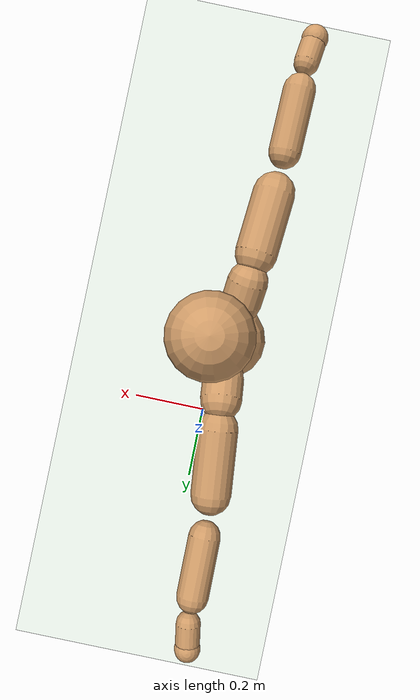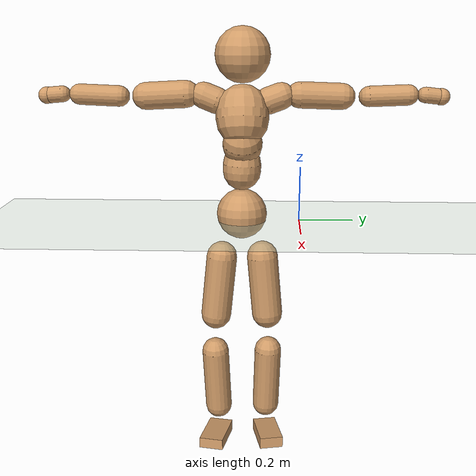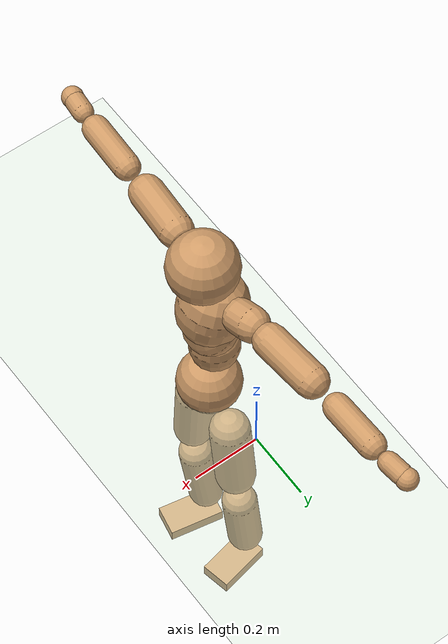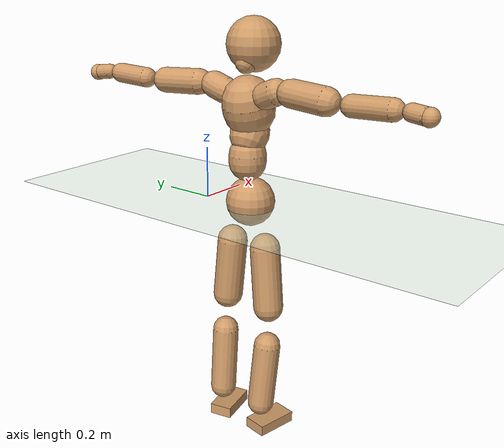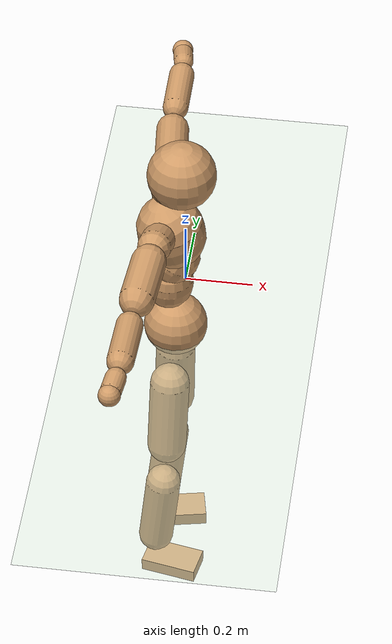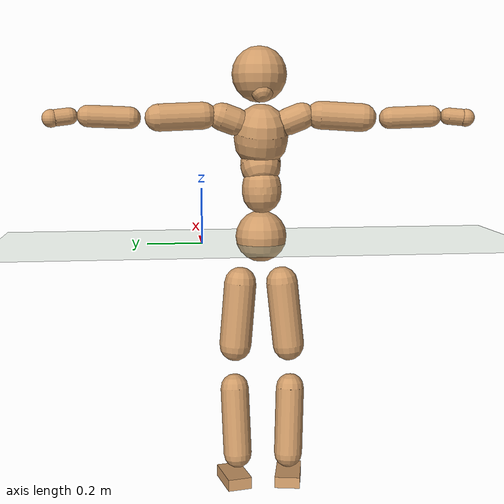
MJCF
<mujoco model="humanoid">
  <compiler coordinate="local" angle="radian"/>
  <default>
    <joint damping="0.0" armature="0.01" stiffness="0.0" limited="true"/>
    <geom conaffinity="1" condim="3" contype="7" margin="0.001" rgba="0.8 0.6 .4 1"/>
  </default>
  <asset>
    <texture type="skybox" builtin="gradient" rgb1=".4 .5 .6" rgb2="0 0 0" width="100" height="100"/>
    <texture builtin="flat" height="1278" mark="cross" markrgb="1 1 1" name="texgeom" random="0.01" rgb1="0.8 0.6 0.4" rgb2="0.8 0.6 0.4" type="cube" width="127"/>
    <texture builtin="checker" height="100" name="texplane" rgb1="0 0 0" rgb2="0.8 0.8 0.8" type="2d" width="100"/>
    <material name="MatPlane" reflectance="0.5" shininess="1" specular="1" texrepeat="60 60" texture="texplane"/>
    <material name="geom" texture="texgeom" texuniform="true"/>
  </asset>
  <worldbody>
    <light cutoff="100" diffuse="1 1 1" dir="-0 0 -1.3" directional="true" exponent="1" pos="0 0 1.3" specular=".1 .1 .1"/>
    <geom conaffinity="1" condim="3" name="floor" pos="0 0 0" rgba="0.8 0.9 0.8 1" size="100 100 .2" type="plane" material="MatPlane"/>
    <body name="Pelvis" pos="-0.0006 -0.215 0.0241">
      <freejoint name="Pelvis"/>
      <geom type="sphere" contype="1" conaffinity="1" density="500" size="0.0935" pos="0.0000 0.0000 0.0000" name="Pelvis"/>
      <body name="L_Hip" pos="-0.01 0.0714 -0.0934">
        <joint name="L_Hip_x" type="hinge" pos="0 0 0" axis="1 0 0" stiffness="800" damping="80" armature="0.02" range="-180.0000 180.0000"/>
        <joint name="L_Hip_y" type="hinge" pos="0 0 0" axis="0 1 0" stiffness="800" damping="80" armature="0.02" range="-180.0000 180.0000"/>
        <joint name="L_Hip_z" type="hinge" pos="0 0 0" axis="0 0 1" stiffness="800" damping="80" armature="0.02" range="-180.0000 180.0000"/>
        <geom type="capsule" contype="1" conaffinity="1" density="500" fromto="-0.0017 0.0067 -0.0779 -0.0069 0.0269 -0.3115" size="0.0588" name="L_Hip"/>
        <body name="L_Knee" pos="-0.0086 0.0337 -0.3894">
          <joint name="L_Knee_x" type="hinge" pos="0 0 0" axis="1 0 0" stiffness="800" damping="80" armature="0.02" range="-180.0000 180.0000"/>
          <joint name="L_Knee_y" type="hinge" pos="0 0 0" axis="0 1 0" stiffness="800" damping="80" armature="0.02" range="-180.0000 180.0000"/>
          <joint name="L_Knee_z" type="hinge" pos="0 0 0" axis="0 0 1" stiffness="800" damping="80" armature="0.02" range="-180.0000 180.0000"/>
          <geom type="capsule" contype="1" conaffinity="1" density="500" fromto="-0.0090 -0.0025 -0.0828 -0.0360 -0.0100 -0.3314" size="0.052" name="L_Knee"/>
          <body name="L_Ankle" pos="-0.045 -0.0125 -0.4142">
            <joint name="L_Ankle_x" type="hinge" pos="0 0 0" axis="1 0 0" stiffness="800" damping="80" armature="0.02" range="-180.0000 180.0000"/>
            <joint name="L_Ankle_y" type="hinge" pos="0 0 0" axis="0 1 0" stiffness="800" damping="80" armature="0.02" range="-180.0000 180.0000"/>
            <joint name="L_Ankle_z" type="hinge" pos="0 0 0" axis="0 0 1" stiffness="800" damping="80" armature="0.02" range="-180.0000 180.0000"/>
            <geom type="box" contype="1" conaffinity="1" density="500" pos="0.0585 0.0120 -0.0293" size="0.0813 0.0453 0.0219" quat="0.9949 0.0000 0.0000 0.1012" name="L_Ankle"/>
            <body name="L_Toe" pos="0.1169 0.024 -0.0585">
              <joint name="L_Toe_x" type="hinge" pos="0 0 0" axis="1 0 0" stiffness="500" damping="50" armature="0.02" range="-180.0000 180.0000"/>
              <joint name="L_Toe_y" type="hinge" pos="0 0 0" axis="0 1 0" stiffness="500" damping="50" armature="0.02" range="-180.0000 180.0000"/>
              <joint name="L_Toe_z" type="hinge" pos="0 0 0" axis="0 0 1" stiffness="500" damping="50" armature="0.02" range="-180.0000 180.0000"/>
              <geom type="box" contype="1" conaffinity="1" density="500" pos="0.0000 0.0000 0.0282" size="0.001 0.0023 0.001" quat="0.9942 0.0000 0.0000 0.1076" name="L_Toe"/>
            </body>
          </body>
        </body>
      </body>
      <body name="R_Hip" pos="-0.0054 -0.0687 -0.0932">
        <joint name="R_Hip_x" type="hinge" pos="0 0 0" axis="1 0 0" stiffness="800" damping="80" armature="0.02" range="-180.0000 180.0000"/>
        <joint name="R_Hip_y" type="hinge" pos="0 0 0" axis="0 1 0" stiffness="800" damping="80" armature="0.02" range="-180.0000 180.0000"/>
        <joint name="R_Hip_z" type="hinge" pos="0 0 0" axis="0 0 1" stiffness="800" damping="80" armature="0.02" range="-180.0000 180.0000"/>
        <geom type="capsule" contype="1" conaffinity="1" density="500" fromto="-0.0021 -0.0081 -0.0793 -0.0084 -0.0325 -0.3170" size="0.058" name="R_Hip"/>
        <body name="R_Knee" pos="-0.0105 -0.0407 -0.3963">
          <joint name="R_Knee_x" type="hinge" pos="0 0 0" axis="1 0 0" stiffness="800" damping="80" armature="0.02" range="-180.0000 180.0000"/>
          <joint name="R_Knee_y" type="hinge" pos="0 0 0" axis="0 1 0" stiffness="800" damping="80" armature="0.02" range="-180.0000 180.0000"/>
          <joint name="R_Knee_z" type="hinge" pos="0 0 0" axis="0 0 1" stiffness="800" damping="80" armature="0.02" range="-180.0000 180.0000"/>
          <geom type="capsule" contype="1" conaffinity="1" density="500" fromto="-0.0085 0.0032 -0.0832 -0.0340 0.0129 -0.3326" size="0.0523" name="R_Knee"/>
          <body name="R_Ankle" pos="-0.0425 0.0161 -0.4158">
            <joint name="R_Ankle_x" type="hinge" pos="0 0 0" axis="1 0 0" stiffness="800" damping="80" armature="0.02" range="-180.0000 180.0000"/>
            <joint name="R_Ankle_y" type="hinge" pos="0 0 0" axis="0 1 0" stiffness="800" damping="80" armature="0.02" range="-180.0000 180.0000"/>
            <joint name="R_Ankle_z" type="hinge" pos="0 0 0" axis="0 0 1" stiffness="800" damping="80" armature="0.02" range="-180.0000 180.0000"/>
            <geom type="box" contype="1" conaffinity="1" density="500" pos="0.0605 -0.0114 -0.0251" size="0.0843 0.0468 0.0211" quat="0.9957 0.0000 0.0000 -0.0931" name="R_Ankle"/>
            <body name="R_Toe" pos="0.121 -0.0228 -0.0503">
              <joint name="R_Toe_x" type="hinge" pos="0 0 0" axis="1 0 0" stiffness="500" damping="50" armature="0.02" range="-180.0000 180.0000"/>
              <joint name="R_Toe_y" type="hinge" pos="0 0 0" axis="0 1 0" stiffness="500" damping="50" armature="0.02" range="-180.0000 180.0000"/>
              <joint name="R_Toe_z" type="hinge" pos="0 0 0" axis="0 0 1" stiffness="500" damping="50" armature="0.02" range="-180.0000 180.0000"/>
              <geom type="box" contype="1" conaffinity="1" density="500" pos="0.0000 0.0000 0.0270" size="0.0009 0.0023 0.0011" quat="0.9965 0.0000 0.0000 -0.0838" name="R_Toe"/>
            </body>
          </body>
        </body>
      </body>
      <body name="Torso" pos="-0.0202 -0.002 0.1069">
        <joint name="Torso_x" type="hinge" pos="0 0 0" axis="1 0 0" stiffness="1000" damping="100" armature="0.02" range="-180.0000 180.0000"/>
        <joint name="Torso_y" type="hinge" pos="0 0 0" axis="0 1 0" stiffness="1000" damping="100" armature="0.02" range="-180.0000 180.0000"/>
        <joint name="Torso_z" type="hinge" pos="0 0 0" axis="0 0 1" stiffness="1000" damping="100" armature="0.02" range="-180.0000 180.0000"/>
        <geom type="capsule" contype="1" conaffinity="1" density="500" fromto="0.0009 0.0021 0.0770 0.0006 0.0014 0.0513" size="0.071" name="Torso"/>
        <body name="Spine" pos="0.0014 0.0035 0.1283">
          <joint name="Spine_x" type="hinge" pos="0 0 0" axis="1 0 0" stiffness="1000" damping="100" armature="0.02" range="-180.0000 180.0000"/>
          <joint name="Spine_y" type="hinge" pos="0 0 0" axis="0 1 0" stiffness="1000" damping="100" armature="0.02" range="-180.0000 180.0000"/>
          <joint name="Spine_z" type="hinge" pos="0 0 0" axis="0 0 1" stiffness="1000" damping="100" armature="0.02" range="-180.0000 180.0000"/>
          <geom type="capsule" contype="1" conaffinity="1" density="500" fromto="0.0173 0.0008 0.0310 0.0115 0.0005 0.0207" size="0.0734" name="Spine"/>
          <body name="Chest" pos="0.0288 0.0013 0.0517">
            <joint name="Chest_x" type="hinge" pos="0 0 0" axis="1 0 0" stiffness="1000" damping="100" armature="0.02" range="-180.0000 180.0000"/>
            <joint name="Chest_y" type="hinge" pos="0 0 0" axis="0 1 0" stiffness="1000" damping="100" armature="0.02" range="-180.0000 180.0000"/>
            <joint name="Chest_z" type="hinge" pos="0 0 0" axis="0 0 1" stiffness="1000" damping="100" armature="0.02" range="-180.0000 180.0000"/>
            <geom type="capsule" contype="1" conaffinity="1" density="500" fromto="-0.0269 -0.0013 0.0925 -0.0180 -0.0008 0.0617" size="0.0971" name="Chest"/>
            <body name="Neck" pos="-0.0497 -0.0038 0.2214">
              <joint name="Neck_x" type="hinge" pos="0 0 0" axis="1 0 0" stiffness="500" damping="50" armature="0.02" range="-180.0000 180.0000"/>
              <joint name="Neck_y" type="hinge" pos="0 0 0" axis="0 1 0" stiffness="500" damping="50" armature="0.02" range="-180.0000 180.0000"/>
              <joint name="Neck_z" type="hinge" pos="0 0 0" axis="0 0 1" stiffness="500" damping="50" armature="0.02" range="-180.0000 180.0000"/>
              <geom type="capsule" contype="1" conaffinity="1" density="500" fromto="0.0115 0.0010 0.0145 0.0458 0.0039 0.0578" size="0.0417" name="Neck"/>
              <body name="Head" pos="0.0573 0.0049 0.0723">
                <joint name="Head_x" type="hinge" pos="0 0 0" axis="1 0 0" stiffness="500" damping="50" armature="0.02" range="-180.0000 180.0000"/>
                <joint name="Head_y" type="hinge" pos="0 0 0" axis="0 1 0" stiffness="500" damping="50" armature="0.02" range="-180.0000 180.0000"/>
                <joint name="Head_z" type="hinge" pos="0 0 0" axis="0 0 1" stiffness="500" damping="50" armature="0.02" range="-180.0000 180.0000"/>
                <geom type="sphere" contype="1" conaffinity="1" density="500" size="0.0995" pos="0.0000 0.0000 0.0000" name="Head"/>
              </body>
            </body>
            <body name="L_Thorax" pos="-0.0404 0.0744 0.1213">
              <joint name="L_Thorax_x" type="hinge" pos="0 0 0" axis="1 0 0" stiffness="500" damping="50" armature="0.02" range="-180.0000 180.0000"/>
              <joint name="L_Thorax_y" type="hinge" pos="0 0 0" axis="0 1 0" stiffness="500" damping="50" armature="0.02" range="-180.0000 180.0000"/>
              <joint name="L_Thorax_z" type="hinge" pos="0 0 0" axis="0 0 1" stiffness="500" damping="50" armature="0.02" range="-180.0000 180.0000"/>
              <geom type="capsule" contype="1" conaffinity="1" density="500" fromto="-0.0015 0.0163 0.0058 -0.0061 0.0651 0.0234" size="0.0493" name="L_Thorax"/>
              <body name="L_Shoulder" pos="-0.0076 0.0813 0.0292">
                <joint name="L_Shoulder_x" type="hinge" pos="0 0 0" axis="1 0 0" stiffness="500" damping="50" armature="0.02" range="-720.0000 720.0000"/>
                <joint name="L_Shoulder_y" type="hinge" pos="0 0 0" axis="0 1 0" stiffness="500" damping="50" armature="0.02" range="-720.0000 720.0000"/>
                <joint name="L_Shoulder_z" type="hinge" pos="0 0 0" axis="0 0 1" stiffness="500" damping="50" armature="0.02" range="-720.0000 720.0000"/>
                <geom type="capsule" contype="1" conaffinity="1" density="500" fromto="-0.0051 0.0516 -0.0022 -0.0206 0.2063 -0.0086" size="0.0481" name="L_Shoulder"/>
                <body name="L_Elbow" pos="-0.0257 0.2579 -0.0108">
                  <joint name="L_Elbow_x" type="hinge" pos="0 0 0" axis="1 0 0" stiffness="500" damping="50" armature="0.02" range="-720.0000 720.0000"/>
                  <joint name="L_Elbow_y" type="hinge" pos="0 0 0" axis="0 1 0" stiffness="500" damping="50" armature="0.02" range="-720.0000 720.0000"/>
                  <joint name="L_Elbow_z" type="hinge" pos="0 0 0" axis="0 0 1" stiffness="500" damping="50" armature="0.02" range="-720.0000 720.0000"/>
                  <geom type="capsule" contype="1" conaffinity="1" density="500" fromto="-0.0003 0.0473 0.0019 -0.0013 0.1894 0.0077" size="0.0379" name="L_Elbow"/>
                  <body name="L_Wrist" pos="-0.0017 0.2367 0.0096">
                    <joint name="L_Wrist_x" type="hinge" pos="0 0 0" axis="1 0 0" stiffness="300" damping="30" armature="0.02" range="-180.0000 180.0000"/>
                    <joint name="L_Wrist_y" type="hinge" pos="0 0 0" axis="0 1 0" stiffness="300" damping="30" armature="0.02" range="-180.0000 180.0000"/>
                    <joint name="L_Wrist_z" type="hinge" pos="0 0 0" axis="0 0 1" stiffness="300" damping="30" armature="0.02" range="-180.0000 180.0000"/>
                    <geom type="capsule" contype="1" conaffinity="1" density="500" fromto="-0.0026 0.0153 -0.0019 -0.0102 0.0614 -0.0074" size="0.0291" name="L_Wrist"/>
                    <body name="L_Hand" pos="-0.0128 0.0767 -0.0093">
                      <joint name="L_Hand_x" type="hinge" pos="0 0 0" axis="1 0 0" stiffness="300" damping="30" armature="0.02" range="-180.0000 180.0000"/>
                      <joint name="L_Hand_y" type="hinge" pos="0 0 0" axis="0 1 0" stiffness="300" damping="30" armature="0.02" range="-180.0000 180.0000"/>
                      <joint name="L_Hand_z" type="hinge" pos="0 0 0" axis="0 0 1" stiffness="300" damping="30" armature="0.02" range="-180.0000 180.0000"/>
                      <geom type="sphere" contype="1" conaffinity="1" density="500" size="0.0310" pos="0.0000 0.0000 0.0000" name="L_Hand"/>
                    </body>
                  </body>
                </body>
              </body>
            </body>
            <body name="R_Thorax" pos="-0.0446 -0.077 0.1201">
              <joint name="R_Thorax_x" type="hinge" pos="0 0 0" axis="1 0 0" stiffness="500" damping="50" armature="0.02" range="-180.0000 180.0000"/>
              <joint name="R_Thorax_y" type="hinge" pos="0 0 0" axis="0 1 0" stiffness="500" damping="50" armature="0.02" range="-180.0000 180.0000"/>
              <joint name="R_Thorax_z" type="hinge" pos="0 0 0" axis="0 0 1" stiffness="500" damping="50" armature="0.02" range="-180.0000 180.0000"/>
              <geom type="capsule" contype="1" conaffinity="1" density="500" fromto="-0.0016 -0.0166 0.0065 -0.0065 -0.0666 0.0261" size="0.0483" name="R_Thorax"/>
              <body name="R_Shoulder" pos="-0.0081 -0.0832 0.0326">
                <joint name="R_Shoulder_x" type="hinge" pos="0 0 0" axis="1 0 0" stiffness="500" damping="50" armature="0.02" range="-720.0000 720.0000"/>
                <joint name="R_Shoulder_y" type="hinge" pos="0 0 0" axis="0 1 0" stiffness="500" damping="50" armature="0.02" range="-720.0000 720.0000"/>
                <joint name="R_Shoulder_z" type="hinge" pos="0 0 0" axis="0 0 1" stiffness="500" damping="50" armature="0.02" range="-720.0000 720.0000"/>
                <geom type="capsule" contype="1" conaffinity="1" density="500" fromto="-0.0041 -0.0498 -0.0029 -0.0163 -0.1991 -0.0118" size="0.0501" name="R_Shoulder"/>
                <body name="R_Elbow" pos="-0.0204 -0.2489 -0.0147">
                  <joint name="R_Elbow_x" type="hinge" pos="0 0 0" axis="1 0 0" stiffness="500" damping="50" armature="0.02" range="-720.0000 720.0000"/>
                  <joint name="R_Elbow_y" type="hinge" pos="0 0 0" axis="0 1 0" stiffness="500" damping="50" armature="0.02" range="-720.0000 720.0000"/>
                  <joint name="R_Elbow_z" type="hinge" pos="0 0 0" axis="0 0 1" stiffness="500" damping="50" armature="0.02" range="-720.0000 720.0000"/>
                  <geom type="capsule" contype="1" conaffinity="1" density="500" fromto="-0.0011 -0.0494 0.0019 -0.0045 -0.1975 0.0077" size="0.0385" name="R_Elbow"/>
                  <body name="R_Wrist" pos="-0.0057 -0.2468 0.0096">
                    <joint name="R_Wrist_x" type="hinge" pos="0 0 0" axis="1 0 0" stiffness="300" damping="30" armature="0.02" range="-180.0000 180.0000"/>
                    <joint name="R_Wrist_y" type="hinge" pos="0 0 0" axis="0 1 0" stiffness="300" damping="30" armature="0.02" range="-180.0000 180.0000"/>
                    <joint name="R_Wrist_z" type="hinge" pos="0 0 0" axis="0 0 1" stiffness="300" damping="30" armature="0.02" range="-180.0000 180.0000"/>
                    <geom type="capsule" contype="1" conaffinity="1" density="500" fromto="-0.0020 -0.0156 -0.0014 -0.0080 -0.0622 -0.0056" size="0.03" name="R_Wrist"/>
                    <body name="R_Hand" pos="-0.01 -0.0778 -0.007">
                      <joint name="R_Hand_x" type="hinge" pos="0 0 0" axis="1 0 0" stiffness="300" damping="30" armature="0.02" range="-180.0000 180.0000"/>
                      <joint name="R_Hand_y" type="hinge" pos="0 0 0" axis="0 1 0" stiffness="300" damping="30" armature="0.02" range="-180.0000 180.0000"/>
                      <joint name="R_Hand_z" type="hinge" pos="0 0 0" axis="0 0 1" stiffness="300" damping="30" armature="0.02" range="-180.0000 180.0000"/>
                      <geom type="sphere" contype="1" conaffinity="1" density="500" size="0.0314" pos="0.0000 0.0000 0.0000" name="R_Hand"/>
                    </body>
                  </body>
                </body>
              </body>
            </body>
          </body>
        </body>
      </body>
    </body>
  </worldbody>
  <actuator>
    <motor name="L_Hip_x" joint="L_Hip_x" gear="500"/>
    <motor name="L_Hip_y" joint="L_Hip_y" gear="500"/>
    <motor name="L_Hip_z" joint="L_Hip_z" gear="500"/>
    <motor name="L_Knee_x" joint="L_Knee_x" gear="500"/>
    <motor name="L_Knee_y" joint="L_Knee_y" gear="500"/>
    <motor name="L_Knee_z" joint="L_Knee_z" gear="500"/>
    <motor name="L_Ankle_x" joint="L_Ankle_x" gear="500"/>
    <motor name="L_Ankle_y" joint="L_Ankle_y" gear="500"/>
    <motor name="L_Ankle_z" joint="L_Ankle_z" gear="500"/>
    <motor name="L_Toe_x" joint="L_Toe_x" gear="500"/>
    <motor name="L_Toe_y" joint="L_Toe_y" gear="500"/>
    <motor name="L_Toe_z" joint="L_Toe_z" gear="500"/>
    <motor name="R_Hip_x" joint="R_Hip_x" gear="500"/>
    <motor name="R_Hip_y" joint="R_Hip_y" gear="500"/>
    <motor name="R_Hip_z" joint="R_Hip_z" gear="500"/>
    <motor name="R_Knee_x" joint="R_Knee_x" gear="500"/>
    <motor name="R_Knee_y" joint="R_Knee_y" gear="500"/>
    <motor name="R_Knee_z" joint="R_Knee_z" gear="500"/>
    <motor name="R_Ankle_x" joint="R_Ankle_x" gear="500"/>
    <motor name="R_Ankle_y" joint="R_Ankle_y" gear="500"/>
    <motor name="R_Ankle_z" joint="R_Ankle_z" gear="500"/>
    <motor name="R_Toe_x" joint="R_Toe_x" gear="500"/>
    <motor name="R_Toe_y" joint="R_Toe_y" gear="500"/>
    <motor name="R_Toe_z" joint="R_Toe_z" gear="500"/>
    <motor name="Torso_x" joint="Torso_x" gear="500"/>
    <motor name="Torso_y" joint="Torso_y" gear="500"/>
    <motor name="Torso_z" joint="Torso_z" gear="500"/>
    <motor name="Spine_x" joint="Spine_x" gear="500"/>
    <motor name="Spine_y" joint="Spine_y" gear="500"/>
    <motor name="Spine_z" joint="Spine_z" gear="500"/>
    <motor name="Chest_x" joint="Chest_x" gear="500"/>
    <motor name="Chest_y" joint="Chest_y" gear="500"/>
    <motor name="Chest_z" joint="Chest_z" gear="500"/>
    <motor name="Neck_x" joint="Neck_x" gear="500"/>
    <motor name="Neck_y" joint="Neck_y" gear="500"/>
    <motor name="Neck_z" joint="Neck_z" gear="500"/>
    <motor name="Head_x" joint="Head_x" gear="500"/>
    <motor name="Head_y" joint="Head_y" gear="500"/>
    <motor name="Head_z" joint="Head_z" gear="500"/>
    <motor name="L_Thorax_x" joint="L_Thorax_x" gear="500"/>
    <motor name="L_Thorax_y" joint="L_Thorax_y" gear="500"/>
    <motor name="L_Thorax_z" joint="L_Thorax_z" gear="500"/>
    <motor name="L_Shoulder_x" joint="L_Shoulder_x" gear="500"/>
    <motor name="L_Shoulder_y" joint="L_Shoulder_y" gear="500"/>
    <motor name="L_Shoulder_z" joint="L_Shoulder_z" gear="500"/>
    <motor name="L_Elbow_x" joint="L_Elbow_x" gear="500"/>
    <motor name="L_Elbow_y" joint="L_Elbow_y" gear="500"/>
    <motor name="L_Elbow_z" joint="L_Elbow_z" gear="500"/>
    <motor name="L_Wrist_x" joint="L_Wrist_x" gear="500"/>
    <motor name="L_Wrist_y" joint="L_Wrist_y" gear="500"/>
    <motor name="L_Wrist_z" joint="L_Wrist_z" gear="500"/>
    <motor name="L_Hand_x" joint="L_Hand_x" gear="500"/>
    <motor name="L_Hand_y" joint="L_Hand_y" gear="500"/>
    <motor name="L_Hand_z" joint="L_Hand_z" gear="500"/>
    <motor name="R_Thorax_x" joint="R_Thorax_x" gear="500"/>
    <motor name="R_Thorax_y" joint="R_Thorax_y" gear="500"/>
    <motor name="R_Thorax_z" joint="R_Thorax_z" gear="500"/>
    <motor name="R_Shoulder_x" joint="R_Shoulder_x" gear="500"/>
    <motor name="R_Shoulder_y" joint="R_Shoulder_y" gear="500"/>
    <motor name="R_Shoulder_z" joint="R_Shoulder_z" gear="500"/>
    <motor name="R_Elbow_x" joint="R_Elbow_x" gear="500"/>
    <motor name="R_Elbow_y" joint="R_Elbow_y" gear="500"/>
    <motor name="R_Elbow_z" joint="R_Elbow_z" gear="500"/>
    <motor name="R_Wrist_x" joint="R_Wrist_x" gear="500"/>
    <motor name="R_Wrist_y" joint="R_Wrist_y" gear="500"/>
    <motor name="R_Wrist_z" joint="R_Wrist_z" gear="500"/>
    <motor name="R_Hand_x" joint="R_Hand_x" gear="500"/>
    <motor name="R_Hand_y" joint="R_Hand_y" gear="500"/>
    <motor name="R_Hand_z" joint="R_Hand_z" gear="500"/>
  </actuator>
  <contact>
    <exclude body1="Torso" body2="Chest"/>
    <exclude body1="Head" body2="Chest"/>
    <exclude body1="R_Knee" body2="R_Toe"/>
    <exclude body1="R_Knee" body2="L_Ankle"/>
    <exclude body1="R_Knee" body2="L_Toe"/>
    <exclude body1="L_Knee" body2="L_Toe"/>
    <exclude body1="L_Knee" body2="R_Ankle"/>
    <exclude body1="L_Knee" body2="R_Toe"/>
    <exclude body1="L_Shoulder" body2="Chest"/>
    <exclude body1="R_Shoulder" body2="Chest"/>
  </contact>
  <sensor/>
  <size njmax="700" nconmax="700"/>
</mujoco>
